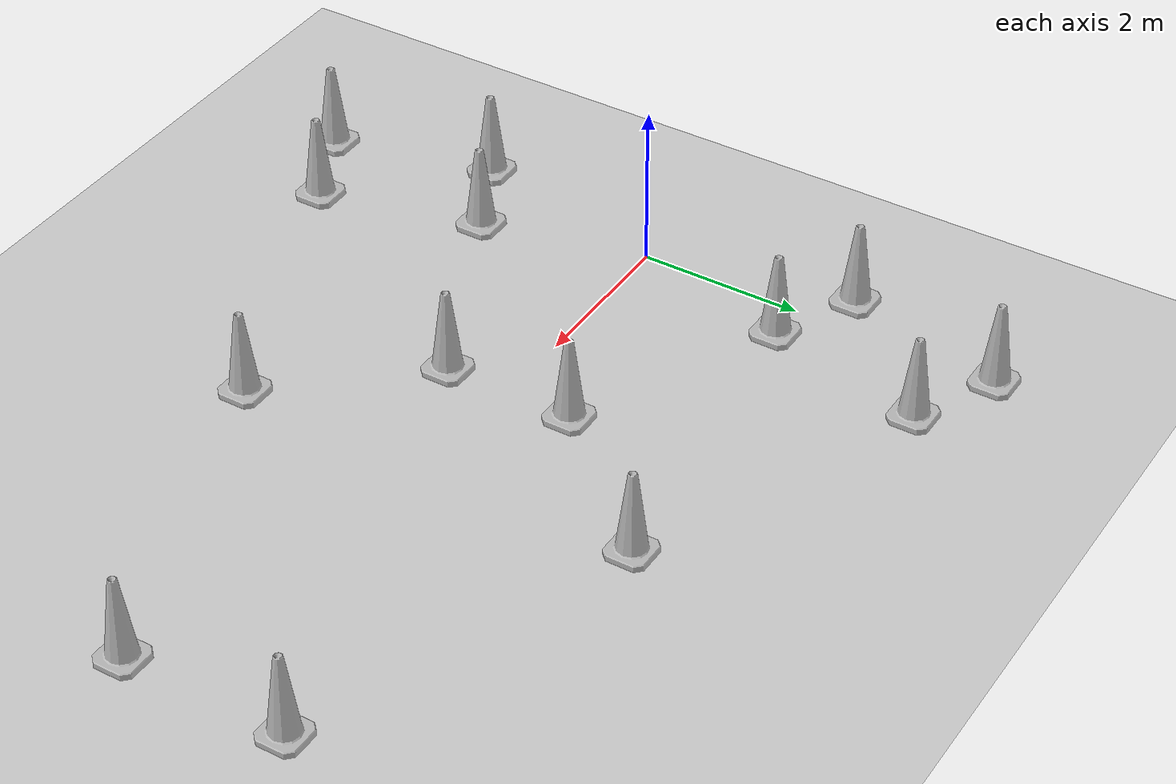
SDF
<sdf version="1.7">
 <world name="test_map">
  <light name="sun" type="directional">
   <pose>0 0 10 0 -0 0</pose>
   <diffuse>0.8 0.8 0.8 1</diffuse>
   <specular>0.2 0.2 0.2 1</specular>
   <attenuation>
    <range>1000</range>
    <constant>0.9</constant>
    <linear>0.01</linear>
    <quadratic>0.001</quadratic>
   </attenuation>
   <direction>-0.5 0.1 -0.9</direction>
  </light>
  <model name="ground_plane">
   <static>1</static>
   <link name="link">
    <collision name="collision">
     <geometry><plane><normal>0 0 1</normal><size>50 50</size></plane></geometry>
     <surface>
      <contact><collide_bitmask>65535</collide_bitmask></contact>
      <friction><ode><mu>100</mu><mu2>50</mu2></ode></friction>
     </surface>
    </collision>
    <visual name="visual">
     <cast_shadows>0</cast_shadows>
     <geometry><plane><normal>0 0 1</normal><size>50 50</size></plane></geometry>
     <material>
      <script><uri>file://media/materials/scripts/gazebo.material</uri><name>Gazebo/Grey</name></script>
     </material>
    </visual>
   </link>
  </model>
  <gravity>0 0 -9.8</gravity>
  <magnetic_field>6e-06 2.3e-05 -4.2e-05</magnetic_field>
  <atmosphere type="adiabatic"/>
  <physics type="ode">
   <max_step_size>0.001</max_step_size>
   <real_time_factor>1</real_time_factor>
   <real_time_update_rate>1000</real_time_update_rate>
  </physics>
  <scene><ambient>0.4 0.4 0.4 1</ambient><background>0.7 0.7 0.7 1</background><shadows>1</shadows></scene>
  <model name="cone_left_1">
   <pose>0.5 2.0 0.0 0 0 0</pose>
   <link name="link">
    <collision name="collision">
     <geometry>
      <mesh><scale>10 10 10</scale><uri>model://construction_cone/meshes/construction_cone.dae</uri></mesh>
     </geometry>
    </collision>
    <visual name="visual">
     <geometry>
      <mesh><scale>10 10 10</scale><uri>model://construction_cone/meshes/construction_cone.dae</uri></mesh>
     </geometry>
    </visual>
    <inertial><mass>1</mass><inertia><ixx>1</ixx><iyy>1</iyy><izz>1</izz></inertia></inertial>
   </link>
  </model>
  <model name="cone_left_2">
   <pose>-0.5 2.5 0.0 0 0 0</pose>
   <link name="link">
    <collision name="collision">
     <geometry>
      <mesh><scale>10 10 10</scale><uri>model://construction_cone/meshes/construction_cone.dae</uri></mesh>
     </geometry>
    </collision>
    <visual name="visual">
     <geometry>
      <mesh><scale>10 10 10</scale><uri>model://construction_cone/meshes/construction_cone.dae</uri></mesh>
     </geometry>
    </visual>
    <inertial><mass>1</mass><inertia><ixx>1</ixx><iyy>1</iyy><izz>1</izz></inertia></inertial>
   </link>
  </model>
  <model name="cone_right_1">
   <pose>0.5 -2.0 0.0 0 0 0</pose>
   <link name="link">
    <collision name="collision">
     <geometry>
      <mesh><scale>10 10 10</scale><uri>model://construction_cone/meshes/construction_cone.dae</uri></mesh>
     </geometry>
    </collision>
    <visual name="visual">
     <geometry>
      <mesh><scale>10 10 10</scale><uri>model://construction_cone/meshes/construction_cone.dae</uri></mesh>
     </geometry>
    </visual>
    <inertial><mass>1</mass><inertia><ixx>1</ixx><iyy>1</iyy><izz>1</izz></inertia></inertial>
   </link>
  </model>
  <model name="cone_right_2">
   <pose>-0.5 -2.5 0.0 0 0 0</pose>
   <link name="link">
    <collision name="collision">
     <geometry>
      <mesh><scale>10 10 10</scale><uri>model://construction_cone/meshes/construction_cone.dae</uri></mesh>
     </geometry>
    </collision>
    <visual name="visual">
     <geometry>
      <mesh><scale>10 10 10</scale><uri>model://construction_cone/meshes/construction_cone.dae</uri></mesh>
     </geometry>
    </visual>
    <inertial><mass>1</mass><inertia><ixx>1</ixx><iyy>1</iyy><izz>1</izz></inertia></inertial>
   </link>
  </model>
  <model name="cone_far_1">
   <pose>4.5 2.5 0.0 0 0 0</pose>
   <include><uri>model://construction_cone</uri><scale>10 10 10</scale></include>
  </model>
  <model name="cone_far_2">
   <pose>4.5 -2.5 0.0 0 0 0</pose>
   <include><uri>model://construction_cone</uri><scale>10 10 10</scale></include>
  </model>
  <model name="cone_left_far_1">
   <pose>1.0 4.0 0.0 0 0 0</pose>
   <include><uri>model://construction_cone</uri><scale>10 10 10</scale></include>
  </model>
  <model name="cone_left_far_2">
   <pose>0.0 4.5 0.0 0 0 0</pose>
   <include><uri>model://construction_cone</uri><scale>10 10 10</scale></include>
  </model>
  <model name="cone_right_far_1">
   <pose>1.0 -4.0 0.0 0 0 0</pose>
   <include><uri>model://construction_cone</uri><scale>10 10 10</scale></include>
  </model>
  <model name="cone_right_far_2">
   <pose>0.0 -4.5 0.0 0 0 0</pose>
   <include><uri>model://construction_cone</uri><scale>10 10 10</scale></include>
  </model>
  <model name="narrow_passage_1">
   <pose>3.0 0.8 0.0 0 0 0</pose>
   <include><uri>model://construction_cone</uri><scale>10 10 10</scale></include>
  </model>
  <model name="narrow_passage_2">
   <pose>3.0 -0.8 0.0 0 0 0</pose>
   <include><uri>model://construction_cone</uri><scale>10 10 10</scale></include>
  </model>
  <model name="maze_4">
   <pose>8.5 1.0 0.0 0 0 0</pose>
   <include><uri>model://construction_cone</uri><scale>10 10 10</scale></include>
  </model>
  <model name="maze_5">
   <pose>8.5 -1.0 0.0 0 0 0</pose>
   <include><uri>model://construction_cone</uri><scale>10 10 10</scale></include>
  </model>
 </world>
</sdf>

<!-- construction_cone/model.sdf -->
<sdf version="1.5">
  <model name="Construction Cone">
    <link name="link">
      <collision name="collision">
        <geometry>
          <mesh>
            <scale>10 10 10</scale>
            <uri>model://construction_cone/meshes/construction_cone.dae</uri>
          </mesh>
        </geometry>
      </collision>
      <visual name="visual">
        <geometry>
          <mesh>
            <scale>10 10 10</scale>
            <uri>model://construction_cone/meshes/construction_cone.dae</uri>
          </mesh>
        </geometry>
      </visual>
    </link>
  </model>
</sdf>
